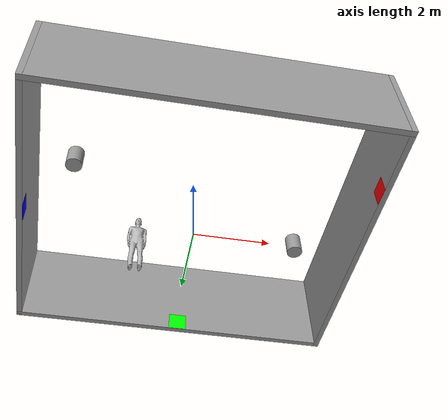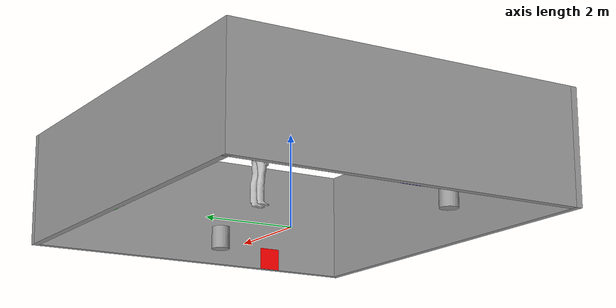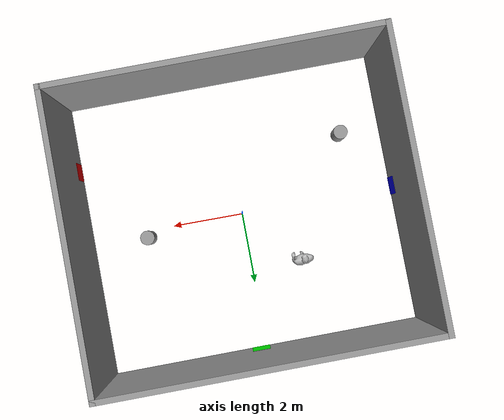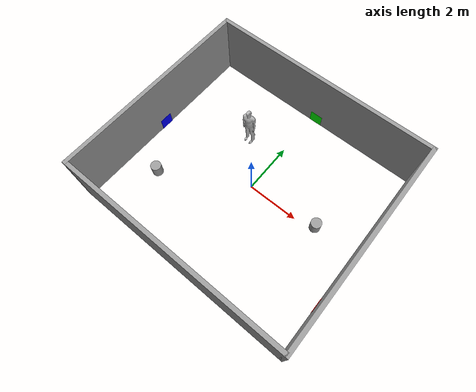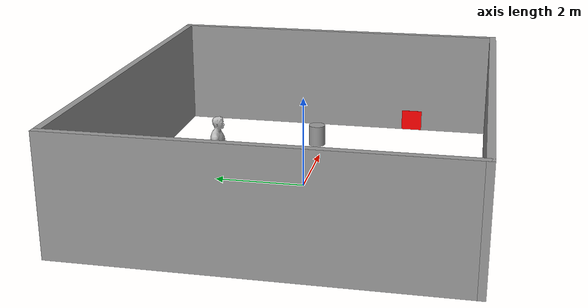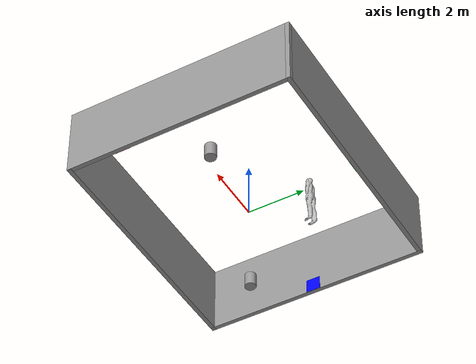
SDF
<?xml version='1.0'?>
<sdf version='1.7'>
  <model name='laboratorio_nuovo'>
    <link name='Wall_0'>
      <pose>-4.425 0 0 0 -0 1.5708</pose>
      <self_collide>0</self_collide>
      <enable_wind>0</enable_wind>
      <kinematic>0</kinematic>
      <visual name='Wall_0_Visual'>
        <pose>0 0 1.25 0 -0 0</pose>
        <geometry>
          <box>
            <size>8 0.15 2.5</size>
          </box>
        </geometry>
        <material>
          <script>
            <uri>file://media/materials/scripts/gazebo.material</uri>
            <name>Gazebo/Grey</name>
          </script>
          <ambient>1 1 1 1</ambient>
          <shader type='pixel'/>
        </material>
        <meta>
          <layer>0</layer>
        </meta>
        <transparency>0</transparency>
        <cast_shadows>1</cast_shadows>
      </visual>
      <collision name='Wall_0_Collision'>
        <laser_retro>0</laser_retro>
        <max_contacts>10</max_contacts>
        <pose>0 0 1.25 0 -0 0</pose>
        <geometry>
          <box>
            <size>8 0.15 2.5</size>
          </box>
        </geometry>
        <surface>
          <friction>
            <ode>
              <mu>1</mu>
              <mu2>1</mu2>
              <fdir1>0 0 0</fdir1>
              <slip1>0</slip1>
              <slip2>0</slip2>
            </ode>
            <torsional>
              <coefficient>1</coefficient>
              <patch_radius>0</patch_radius>
              <surface_radius>0</surface_radius>
              <use_patch_radius>1</use_patch_radius>
              <ode>
                <slip>0</slip>
              </ode>
            </torsional>
          </friction>
          <bounce>
            <restitution_coefficient>0</restitution_coefficient>
            <threshold>1e+06</threshold>
          </bounce>
          <contact>
            <collide_without_contact>0</collide_without_contact>
            <collide_without_contact_bitmask>1</collide_without_contact_bitmask>
            <collide_bitmask>1</collide_bitmask>
            <ode>
              <soft_cfm>0</soft_cfm>
              <soft_erp>0.2</soft_erp>
              <kp>1e+13</kp>
              <kd>1</kd>
              <max_vel>0.01</max_vel>
              <min_depth>0</min_depth>
            </ode>
            <bullet>
              <split_impulse>1</split_impulse>
              <split_impulse_penetration_threshold>-0.01</split_impulse_penetration_threshold>
              <soft_cfm>0</soft_cfm>
              <soft_erp>0.2</soft_erp>
              <kp>1e+13</kp>
              <kd>1</kd>
            </bullet>
          </contact>
        </surface>
      </collision>
    </link>
    <link name='Wall_6'>
      <pose>0 -3.925 0 0 -0 0</pose>
      <self_collide>0</self_collide>
      <enable_wind>0</enable_wind>
      <kinematic>0</kinematic>
      <visual name='Wall_6_Visual'>
        <pose>0 0 1.25 0 -0 0</pose>
        <geometry>
          <box>
            <size>9 0.15 2.5</size>
          </box>
        </geometry>
        <material>
          <script>
            <uri>file://media/materials/scripts/gazebo.material</uri>
            <name>Gazebo/Grey</name>
          </script>
          <ambient>1 1 1 1</ambient>
          <shader type='pixel'/>
        </material>
        <meta>
          <layer>0</layer>
        </meta>
        <transparency>0</transparency>
        <cast_shadows>1</cast_shadows>
      </visual>
      <collision name='Wall_6_Collision'>
        <laser_retro>0</laser_retro>
        <max_contacts>10</max_contacts>
        <pose>0 0 1.25 0 -0 0</pose>
        <geometry>
          <box>
            <size>9 0.15 2.5</size>
          </box>
        </geometry>
        <surface>
          <friction>
            <ode>
              <mu>1</mu>
              <mu2>1</mu2>
              <fdir1>0 0 0</fdir1>
              <slip1>0</slip1>
              <slip2>0</slip2>
            </ode>
            <torsional>
              <coefficient>1</coefficient>
              <patch_radius>0</patch_radius>
              <surface_radius>0</surface_radius>
              <use_patch_radius>1</use_patch_radius>
              <ode>
                <slip>0</slip>
              </ode>
            </torsional>
          </friction>
          <bounce>
            <restitution_coefficient>0</restitution_coefficient>
            <threshold>1e+06</threshold>
          </bounce>
          <contact>
            <collide_without_contact>0</collide_without_contact>
            <collide_without_contact_bitmask>1</collide_without_contact_bitmask>
            <collide_bitmask>1</collide_bitmask>
            <ode>
              <soft_cfm>0</soft_cfm>
              <soft_erp>0.2</soft_erp>
              <kp>1e+13</kp>
              <kd>1</kd>
              <max_vel>0.01</max_vel>
              <min_depth>0</min_depth>
            </ode>
            <bullet>
              <split_impulse>1</split_impulse>
              <split_impulse_penetration_threshold>-0.01</split_impulse_penetration_threshold>
              <soft_cfm>0</soft_cfm>
              <soft_erp>0.2</soft_erp>
              <kp>1e+13</kp>
              <kd>1</kd>
            </bullet>
          </contact>
        </surface>
      </collision>
    </link>
    <link name='Wall_7'>
      <pose>4.425 0 0 0 -0 1.5708</pose>
      <self_collide>0</self_collide>
      <enable_wind>0</enable_wind>
      <kinematic>0</kinematic>
      <visual name='Wall_7_Visual'>
        <pose>0 0 1.25 0 -0 0</pose>
        <geometry>
          <box>
            <size>8 0.15 2.5</size>
          </box>
        </geometry>
        <material>
          <script>
            <uri>file://media/materials/scripts/gazebo.material</uri>
            <name>Gazebo/Grey</name>
          </script>
          <ambient>1 1 1 1</ambient>
          <shader type='pixel'/>
        </material>
        <meta>
          <layer>0</layer>
        </meta>
        <transparency>0</transparency>
        <cast_shadows>1</cast_shadows>
      </visual>
      <collision name='Wall_7_Collision'>
        <laser_retro>0</laser_retro>
        <max_contacts>10</max_contacts>
        <pose>0 0 1.25 0 -0 0</pose>
        <geometry>
          <box>
            <size>8 0.15 2.5</size>
          </box>
        </geometry>
        <surface>
          <friction>
            <ode>
              <mu>1</mu>
              <mu2>1</mu2>
              <fdir1>0 0 0</fdir1>
              <slip1>0</slip1>
              <slip2>0</slip2>
            </ode>
            <torsional>
              <coefficient>1</coefficient>
              <patch_radius>0</patch_radius>
              <surface_radius>0</surface_radius>
              <use_patch_radius>1</use_patch_radius>
              <ode>
                <slip>0</slip>
              </ode>
            </torsional>
          </friction>
          <bounce>
            <restitution_coefficient>0</restitution_coefficient>
            <threshold>1e+06</threshold>
          </bounce>
          <contact>
            <collide_without_contact>0</collide_without_contact>
            <collide_without_contact_bitmask>1</collide_without_contact_bitmask>
            <collide_bitmask>1</collide_bitmask>
            <ode>
              <soft_cfm>0</soft_cfm>
              <soft_erp>0.2</soft_erp>
              <kp>1e+13</kp>
              <kd>1</kd>
              <max_vel>0.01</max_vel>
              <min_depth>0</min_depth>
            </ode>
            <bullet>
              <split_impulse>1</split_impulse>
              <split_impulse_penetration_threshold>-0.01</split_impulse_penetration_threshold>
              <soft_cfm>0</soft_cfm>
              <soft_erp>0.2</soft_erp>
              <kp>1e+13</kp>
              <kd>1</kd>
            </bullet>
          </contact>
        </surface>
      </collision>
    </link>
    <link name='Wall_8'>
      <pose>0 3.925 0 0 -0 3.14159</pose>
      <self_collide>0</self_collide>
      <enable_wind>0</enable_wind>
      <kinematic>0</kinematic>
      <visual name='Wall_8_Visual'>
        <pose>0 0 1.25 0 -0 0</pose>
        <geometry>
          <box>
            <size>9 0.15 2.5</size>
          </box>
        </geometry>
        <material>
          <script>
            <uri>file://media/materials/scripts/gazebo.material</uri>
            <name>Gazebo/Grey</name>
          </script>
          <ambient>1 1 1 1</ambient>
          <shader type='pixel'/>
        </material>
        <meta>
          <layer>0</layer>
        </meta>
        <transparency>0</transparency>
        <cast_shadows>1</cast_shadows>
      </visual>
      <collision name='Wall_8_Collision'>
        <laser_retro>0</laser_retro>
        <max_contacts>10</max_contacts>
        <pose>0 0 1.25 0 -0 0</pose>
        <geometry>
          <box>
            <size>9 0.15 2.5</size>
          </box>
        </geometry>
        <surface>
          <friction>
            <ode>
              <mu>1</mu>
              <mu2>1</mu2>
              <fdir1>0 0 0</fdir1>
              <slip1>0</slip1>
              <slip2>0</slip2>
            </ode>
            <torsional>
              <coefficient>1</coefficient>
              <patch_radius>0</patch_radius>
              <surface_radius>0</surface_radius>
              <use_patch_radius>1</use_patch_radius>
              <ode>
                <slip>0</slip>
              </ode>
            </torsional>
          </friction>
          <bounce>
            <restitution_coefficient>0</restitution_coefficient>
            <threshold>1e+06</threshold>
          </bounce>
          <contact>
            <collide_without_contact>0</collide_without_contact>
            <collide_without_contact_bitmask>1</collide_without_contact_bitmask>
            <collide_bitmask>1</collide_bitmask>
            <ode>
              <soft_cfm>0</soft_cfm>
              <soft_erp>0.2</soft_erp>
              <kp>1e+13</kp>
              <kd>1</kd>
              <max_vel>0.01</max_vel>
              <min_depth>0</min_depth>
            </ode>
            <bullet>
              <split_impulse>1</split_impulse>
              <split_impulse_penetration_threshold>-0.01</split_impulse_penetration_threshold>
              <soft_cfm>0</soft_cfm>
              <soft_erp>0.2</soft_erp>
              <kp>1e+13</kp>
              <kd>1</kd>
            </bullet>
          </contact>
        </surface>
      </collision>
    </link>
    <link name='cylinder_1'>
      <inertial>
        <mass>1</mass>
        <inertia>
          <ixx>0.145833</ixx>
          <ixy>0</ixy>
          <ixz>0</ixz>
          <iyy>0.145833</iyy>
          <iyz>0</iyz>
          <izz>0.125</izz>
        </inertia>
        <pose>0 0 0 0 -0 0</pose>
      </inertial>
      <pose>-3.14931 -1.74283 0.25 0 -0 0</pose>
      <gravity>1</gravity>
      <self_collide>0</self_collide>
      <kinematic>0</kinematic>
      <enable_wind>0</enable_wind>
      <visual name='visual'>
        <pose>0 0 0 0 -0 0</pose>
        <geometry>
          <cylinder>
            <radius>0.2</radius>
            <length>0.5</length>
          </cylinder>
        </geometry>
        <material>
          <lighting>1</lighting>
          <script>
            <uri>file://media/materials/scripts/gazebo.material</uri>
            <name>Gazebo/Grey</name>
          </script>
          <shader type='pixel'>
            <normal_map>__default__</normal_map>
          </shader>
          <ambient>0.3 0.3 0.3 1</ambient>
          <diffuse>0.7 0.7 0.7 1</diffuse>
          <specular>0.01 0.01 0.01 1</specular>
          <emissive>0 0 0 1</emissive>
        </material>
        <transparency>0</transparency>
        <cast_shadows>1</cast_shadows>
      </visual>
      <collision name='collision'>
        <laser_retro>0</laser_retro>
        <max_contacts>10</max_contacts>
        <pose>0 0 0 0 -0 0</pose>
        <geometry>
          <cylinder>
            <radius>0.2</radius>
            <length>0.5</length>
          </cylinder>
        </geometry>
      </collision>
    </link>
    <link name='cylinder_2'>
      <inertial>
        <mass>1</mass>
        <inertia>
          <ixx>0.145833</ixx>
          <ixy>0</ixy>
          <ixz>0</ixz>
          <iyy>0.145833</iyy>
          <iyz>0</iyz>
          <izz>0.125</izz>
        </inertia>
        <pose>0 0 0 0 -0 0</pose>
      </inertial>
      <pose>2.74563 0.197873 0.25 0 -0 0</pose>
      <gravity>1</gravity>
      <self_collide>0</self_collide>
      <kinematic>0</kinematic>
      <enable_wind>0</enable_wind>
      <visual name='visual'>
        <pose>0 0 0 0 -0 0</pose>
        <geometry>
          <cylinder>
            <radius>0.2</radius>
            <length>0.5</length>
          </cylinder>
        </geometry>
        <material>
          <lighting>1</lighting>
          <script>
            <uri>file://media/materials/scripts/gazebo.material</uri>
            <name>Gazebo/Grey</name>
          </script>
          <shader type='pixel'>
            <normal_map>__default__</normal_map>
          </shader>
          <ambient>0.3 0.3 0.3 1</ambient>
          <diffuse>0.7 0.7 0.7 1</diffuse>
          <specular>0.01 0.01 0.01 1</specular>
          <emissive>0 0 0 1</emissive>
        </material>
        <transparency>0</transparency>
        <cast_shadows>1</cast_shadows>
      </visual>
      <collision name='collision'>
        <laser_retro>0</laser_retro>
        <max_contacts>10</max_contacts>
        <pose>0 0 0 0 -0 0</pose>
        <geometry>
          <cylinder>
            <radius>0.2</radius>
            <length>0.5</length>
          </cylinder>
        </geometry>
      </collision>
    </link>
    <link name='square_1'>
      <inertial>
        <mass>1</mass>
        <inertia>
          <ixx>0.166667</ixx>
          <ixy>0</ixy>
          <ixz>0</ixz>
          <iyy>0.166667</iyy>
          <iyz>0</iyz>
          <izz>0.166667</izz>
        </inertia>
        <pose>0 0 0 0 -0 0</pose>
      </inertial>
      <pose>0.166698 3.85001 0.25 0 -0 1.5708</pose>
      <self_collide>0</self_collide>
      <enable_wind>0</enable_wind>
      <kinematic>0</kinematic>
      <gravity>1</gravity>
      <visual name='visual'>
        <pose>0 0 0 0 -0 0</pose>
        <geometry>
          <box>
            <size>0.01 0.5 0.5</size>
          </box>
        </geometry>
        <material>
          <lighting>1</lighting>
          <shader type='pixel'>
            <normal_map>__default__</normal_map>
          </shader>
          <ambient>0 1 0 1</ambient>
          <diffuse>0 1 0 1</diffuse>
          <specular>0.01 0.01 0.01 1</specular>
          <emissive>0 0 0 1</emissive>
        </material>
        <transparency>0</transparency>
        <cast_shadows>1</cast_shadows>
      </visual>
      <collision name='collision'>
        <laser_retro>0</laser_retro>
        <max_contacts>10</max_contacts>
        <pose>0 0 0 0 -0 0</pose>
        <geometry>
          <box>
            <size>0.01 0.5 0.5</size>
          </box>
        </geometry>
      </collision>
    </link>
    <link name='square_2'>
      <inertial>
        <mass>1</mass>
        <inertia>
          <ixx>0.166667</ixx>
          <ixy>0</ixy>
          <ixz>0</ixz>
          <iyy>0.166667</iyy>
          <iyz>0</iyz>
          <izz>0.166667</izz>
        </inertia>
        <pose>0 0 0 0 -0 0</pose>
      </inertial>
      <pose>4.35 -2 0.25 0 -0 0</pose>
      <self_collide>0</self_collide>
      <enable_wind>0</enable_wind>
      <kinematic>0</kinematic>
      <gravity>1</gravity>
      <visual name='visual'>
        <pose>0 0 0 0 -0 0</pose>
        <geometry>
          <box>
            <size>0.01 0.5 0.5</size>
          </box>
        </geometry>
        <material>
          <lighting>1</lighting>
          <shader type='pixel'>
            <normal_map>__default__</normal_map>
          </shader>
          <ambient>1 0 0 1</ambient>
          <diffuse>1 0 0 1</diffuse>
          <specular>0.01 0.01 0.01 1</specular>
          <emissive>0 0 0 1</emissive>
        </material>
        <transparency>0</transparency>
        <cast_shadows>1</cast_shadows>
      </visual>
      <collision name='collision'>
        <laser_retro>0</laser_retro>
        <max_contacts>10</max_contacts>
        <pose>0 0 0 0 -0 0</pose>
        <geometry>
          <box>
            <size>0.01 0.5 0.5</size>
          </box>
        </geometry>
      </collision>
    </link>
    <link name='square_3'>
      <inertial>
        <mass>1</mass>
        <inertia>
          <ixx>0.166667</ixx>
          <ixy>0</ixy>
          <ixz>0</ixz>
          <iyy>0.166667</iyy>
          <iyz>0</iyz>
          <izz>0.166667</izz>
        </inertia>
        <pose>0 0 0 0 -0 0</pose>
      </inertial>
      <pose>-4.34 0 0.25 0 -0 0</pose>
      <self_collide>0</self_collide>
      <enable_wind>0</enable_wind>
      <kinematic>0</kinematic>
      <gravity>1</gravity>
      <visual name='visual'>
        <pose>0 0 0 0 -0 0</pose>
        <geometry>
          <box>
            <size>0.01 0.5 0.5</size>
          </box>
        </geometry>
        <material>
          <lighting>1</lighting>
          <shader type='pixel'>
            <normal_map>__default__</normal_map>
          </shader>
          <ambient>0 0 1 1</ambient>
          <diffuse>0 0 1 1</diffuse>
          <specular>0.01 0.01 0.01 1</specular>
          <emissive>0 0 0 1</emissive>
        </material>
        <transparency>0</transparency>
        <cast_shadows>1</cast_shadows>
      </visual>
      <collision name='collision'>
        <laser_retro>0</laser_retro>
        <max_contacts>10</max_contacts>
        <pose>0 0 0 0 -0 0</pose>
        <geometry>
          <box>
            <size>0.01 0.5 0.5</size>
          </box>
        </geometry>
      </collision>
    </link>
    <model name='person_standing'>
      <link name='link'>
        <inertial>
          <pose>0 -0.1 0.95 0 -0 0</pose>
          <mass>80</mass>
          <inertia>
            <ixx>24.88</ixx>
            <ixy>0</ixy>
            <ixz>0</ixz>
            <iyy>25.73</iyy>
            <iyz>0</iyz>
            <izz>2.48</izz>
          </inertia>
        </inertial>
        <collision name='bottom'>
          <pose>0 -0.1 0.01 0 -0 0</pose>
          <geometry>
            <box>
              <size>0.5 0.35 0.02</size>
            </box>
          </geometry>
        </collision>
        <collision name='person'>
          <pose>0 0 0.02 0.04 -0 0</pose>
          <geometry>
            <mesh>
              <uri>model://person_standing/meshes/standing.dae</uri>
            </mesh>
          </geometry>
        </collision>
        <visual name='visual'>
          <pose>0 0 0.02 0.04 -0 0</pose>
          <geometry>
            <mesh>
              <uri>model://person_standing/meshes/standing.dae</uri>
            </mesh>
          </geometry>
        </visual>
      </link>
      <pose>-1.3583 1.61618 0 0 -0 0</pose>
    </model>
    <static>1</static>
    <allow_auto_disable>1</allow_auto_disable>
  </model>
</sdf>
